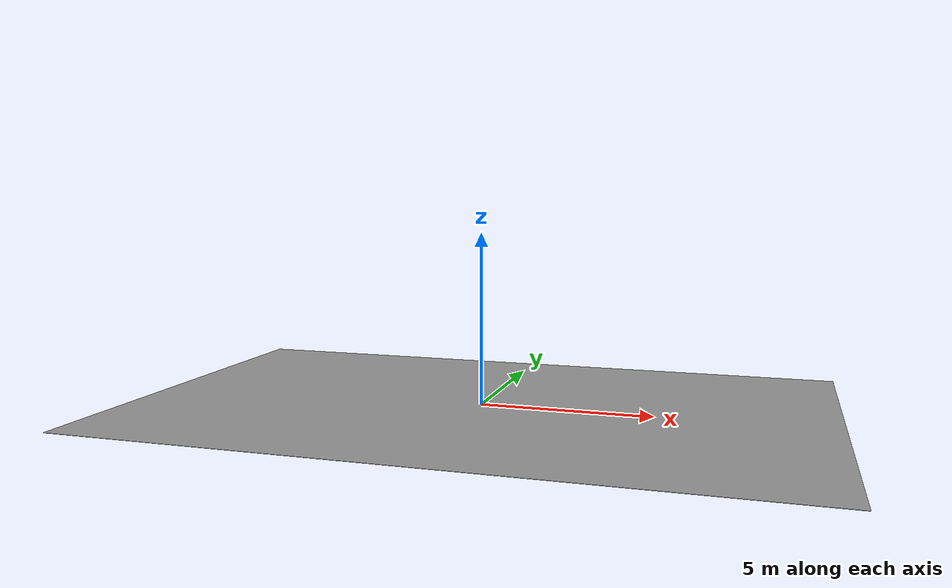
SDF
<?xml version='1.0'?>
<sdf version='1.6'>
  <model name='floor'>
    <link name='main'>
      <pose frame=''>0 0 0.01 0 0 0</pose>
      <collision name='main_Collision'>
        <geometry>
          <box>
            <size>20 12.50 0.01 </size>
          </box>
        </geometry>
      </collision>
      <visual name='main_Visual'>
        <geometry>
          <box>
            <size>20 12.50 0.01</size>
          </box>
        </geometry>
        <material>
          <script>
            <uri>model://floor/materials/scripts</uri>
            <uri>model://floor/materials/textures</uri>
            <name>floor</name>
          </script>
        </material>
      </visual>
    </link>
    <static>1</static>
  </model>
</sdf>
